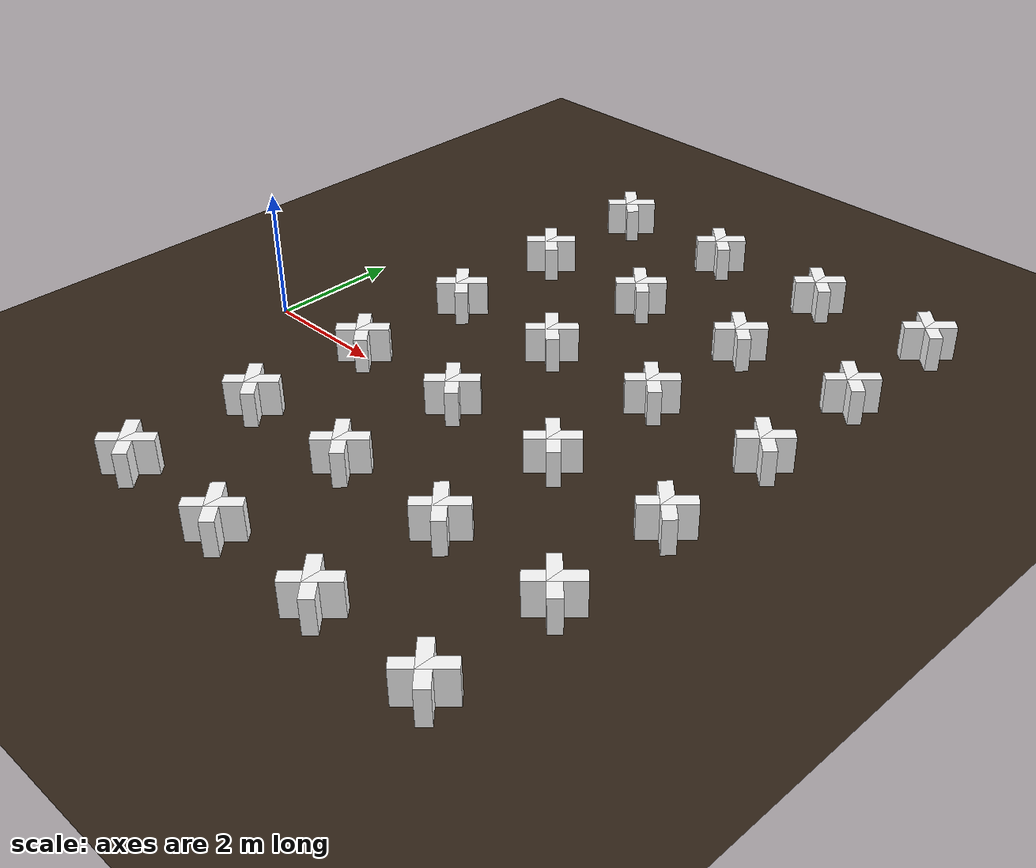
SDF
<?xml version="1.0" ?>
<sdf version="1.8">
  <world name="agribot_farm">
    <physics name="1ms" type="ignored">
      <max_step_size>0.001</max_step_size>
      <real_time_factor>1.0</real_time_factor>
    </physics>

    <plugin filename="gz-sim-physics-system" name="gz::sim::systems::Physics"/>
    <plugin filename="gz-sim-user-commands-system" name="gz::sim::systems::UserCommands"/>
    <plugin filename="gz-sim-scene-broadcaster-system" name="gz::sim::systems::SceneBroadcaster"/>

    <light type="directional" name="sun">
      <cast_shadows>true</cast_shadows>
      <pose>0 0 10 0 0 0</pose>
      <diffuse>0.9 0.9 0.8 1</diffuse>
      <direction>-0.5 0.1 -0.9</direction>
    </light>

    <model name="ground_plane">
      <static>true</static>
      <link name="link">
        <collision name="collision">
          <geometry><plane><normal>0 0 1</normal><size>100 100</size></plane></geometry>
        </collision>
        <visual name="visual">
          <geometry><plane><normal>0 0 1</normal><size>100 100</size></plane></geometry>
          <material><ambient>0.2 0.15 0.1 1</ambient><diffuse>0.2 0.15 0.1 1</diffuse></material>
        </visual>
      </link>
    </model>

    <model name="farm_assets">
      <static>true</static>
      <link name="link">

        <visual name="c1_r1_v1"><pose>2 6 0.15 1.57 0 0.78</pose><geometry><box><size>0.8 0.8 0.2</size></box></geometry><material><diffuse>1 1 1 1</diffuse><pbr><metal><albedo_map>textures/healthy_1.jpg</albedo_map></metal></pbr></material></visual>
        <visual name="c1_r1_v2"><pose>2 6 0.15 1.57 0 -0.78</pose><geometry><box><size>0.8 0.8 0.2</size></box></geometry><material><diffuse>1 1 1 1</diffuse><pbr><metal><albedo_map>textures/healthy_1.jpg</albedo_map></metal></pbr></material></visual>
        <collision name="c1_r1_col"><pose>2 6 0.5 0 0 0</pose><geometry><cylinder><radius>0.05</radius><length>1.0</length></cylinder></geometry></collision>
        <visual name="c1_r2_v1"><pose>2 4 0.15 1.57 0 0.78</pose><geometry><box><size>0.8 0.8 0.2</size></box></geometry><material><diffuse>1 1 1 1</diffuse><pbr><metal><albedo_map>textures/healthy_2.jpg</albedo_map></metal></pbr></material></visual>
        <visual name="c1_r2_v2"><pose>2 4 0.15 1.57 0 -0.78</pose><geometry><box><size>0.8 0.8 0.2</size></box></geometry><material><diffuse>1 1 1 1</diffuse><pbr><metal><albedo_map>textures/healthy_2.jpg</albedo_map></metal></pbr></material></visual>
        <collision name="c1_r2_col"><pose>2 4 0.5 0 0 0</pose><geometry><cylinder><radius>0.05</radius><length>1.0</length></cylinder></geometry></collision>
        <visual name="c1_r3_v1"><pose>2 2 0.15 1.57 0 0.78</pose><geometry><box><size>0.8 0.8 0.2</size></box></geometry><material><diffuse>1 1 1 1</diffuse><pbr><metal><albedo_map>textures/healthy_3.jpg</albedo_map></metal></pbr></material></visual>
        <visual name="c1_r3_v2"><pose>2 2 0.15 1.57 0 -0.78</pose><geometry><box><size>0.8 0.8 0.2</size></box></geometry><material><diffuse>1 1 1 1</diffuse><pbr><metal><albedo_map>textures/healthy_3.jpg</albedo_map></metal></pbr></material></visual>
        <collision name="c1_r3_col"><pose>2 2 0.5 0 0 0</pose><geometry><cylinder><radius>0.05</radius><length>1.0</length></cylinder></geometry></collision>
        <visual name="c1_r4_v1"><pose>2 0 0.15 1.57 0 0.78</pose><geometry><box><size>0.8 0.8 0.2</size></box></geometry><material><diffuse>1 1 1 1</diffuse><pbr><metal><albedo_map>textures/healthy_4.jpg</albedo_map></metal></pbr></material></visual>
        <visual name="c1_r4_v2"><pose>2 0 0.15 1.57 0 -0.78</pose><geometry><box><size>0.8 0.8 0.2</size></box></geometry><material><diffuse>1 1 1 1</diffuse><pbr><metal><albedo_map>textures/healthy_4.jpg</albedo_map></metal></pbr></material></visual>
        <collision name="c1_r4_col"><pose>2 0 0.5 0 0 0</pose><geometry><cylinder><radius>0.05</radius><length>1.0</length></cylinder></geometry></collision>
        <visual name="c1_r5_v1"><pose>2 -2 0.15 1.57 0 0.78</pose><geometry><box><size>0.8 0.8 0.2</size></box></geometry><material><diffuse>1 1 1 1</diffuse><pbr><metal><albedo_map>textures/healthy_5.jpg</albedo_map></metal></pbr></material></visual>
        <visual name="c1_r5_v2"><pose>2 -2 0.15 1.57 0 -0.78</pose><geometry><box><size>0.8 0.8 0.2</size></box></geometry><material><diffuse>1 1 1 1</diffuse><pbr><metal><albedo_map>textures/healthy_5.jpg</albedo_map></metal></pbr></material></visual>
        <collision name="c1_r5_col"><pose>2 -2 0.5 0 0 0</pose><geometry><cylinder><radius>0.05</radius><length>1.0</length></cylinder></geometry></collision>
        <visual name="c1_r6_v1"><pose>2 -4 0.15 1.57 0 0.78</pose><geometry><box><size>0.8 0.8 0.2</size></box></geometry><material><diffuse>1 1 1 1</diffuse><pbr><metal><albedo_map>textures/healthy_6.jpg</albedo_map></metal></pbr></material></visual>
        <visual name="c1_r6_v2"><pose>2 -4 0.15 1.57 0 -0.78</pose><geometry><box><size>0.8 0.8 0.2</size></box></geometry><material><diffuse>1 1 1 1</diffuse><pbr><metal><albedo_map>textures/healthy_6.jpg</albedo_map></metal></pbr></material></visual>
        <collision name="c1_r6_col"><pose>2 -4 0.5 0 0 0</pose><geometry><cylinder><radius>0.05</radius><length>1.0</length></cylinder></geometry></collision>

        <visual name="c2_r1_v1"><pose>4 6 0.15 1.57 0 0.78</pose><geometry><box><size>0.8 0.8 0.2</size></box></geometry><material><diffuse>1 1 1 1</diffuse><pbr><metal><albedo_map>textures/healthy_7.jpg</albedo_map></metal></pbr></material></visual>
        <visual name="c2_r1_v2"><pose>4 6 0.15 1.57 0 -0.78</pose><geometry><box><size>0.8 0.8 0.2</size></box></geometry><material><diffuse>1 1 1 1</diffuse><pbr><metal><albedo_map>textures/healthy_7.jpg</albedo_map></metal></pbr></material></visual>
        <collision name="c2_r1_col"><pose>4 6 0.5 0 0 0</pose><geometry><cylinder><radius>0.05</radius><length>1.0</length></cylinder></geometry></collision>
        <visual name="c2_r2_v1"><pose>4 4 0.15 1.57 0 0.78</pose><geometry><box><size>0.8 0.8 0.2</size></box></geometry><material><diffuse>1 1 1 1</diffuse><pbr><metal><albedo_map>textures/healthy_8.jpg</albedo_map></metal></pbr></material></visual>
        <visual name="c2_r2_v2"><pose>4 4 0.15 1.57 0 -0.78</pose><geometry><box><size>0.8 0.8 0.2</size></box></geometry><material><diffuse>1 1 1 1</diffuse><pbr><metal><albedo_map>textures/healthy_8.jpg</albedo_map></metal></pbr></material></visual>
        <collision name="c2_r2_col"><pose>4 4 0.5 0 0 0</pose><geometry><cylinder><radius>0.05</radius><length>1.0</length></cylinder></geometry></collision>
        <visual name="c2_r3_v1"><pose>4 2 0.15 1.57 0 0.78</pose><geometry><box><size>0.8 0.8 0.2</size></box></geometry><material><diffuse>1 1 1 1</diffuse><pbr><metal><albedo_map>textures/healthy_9.jpg</albedo_map></metal></pbr></material></visual>
        <visual name="c2_r3_v2"><pose>4 2 0.15 1.57 0 -0.78</pose><geometry><box><size>0.8 0.8 0.2</size></box></geometry><material><diffuse>1 1 1 1</diffuse><pbr><metal><albedo_map>textures/healthy_9.jpg</albedo_map></metal></pbr></material></visual>
        <collision name="c2_r3_col"><pose>4 2 0.5 0 0 0</pose><geometry><cylinder><radius>0.05</radius><length>1.0</length></cylinder></geometry></collision>
        <visual name="c2_r4_v1"><pose>4 0 0.15 1.57 0 0.78</pose><geometry><box><size>0.8 0.8 0.2</size></box></geometry><material><diffuse>1 1 1 1</diffuse><pbr><metal><albedo_map>textures/healthy_10.jpg</albedo_map></metal></pbr></material></visual>
        <visual name="c2_r4_v2"><pose>4 0 0.15 1.57 0 -0.78</pose><geometry><box><size>0.8 0.8 0.2</size></box></geometry><material><diffuse>1 1 1 1</diffuse><pbr><metal><albedo_map>textures/healthy_10.jpg</albedo_map></metal></pbr></material></visual>
        <collision name="c2_r4_col"><pose>4 0 0.5 0 0 0</pose><geometry><cylinder><radius>0.05</radius><length>1.0</length></cylinder></geometry></collision>
        <visual name="c2_r5_v1"><pose>4 -2 0.15 1.57 0 0.78</pose><geometry><box><size>0.8 0.8 0.2</size></box></geometry><material><diffuse>1 1 1 1</diffuse><pbr><metal><albedo_map>textures/healthy_11.jpg</albedo_map></metal></pbr></material></visual>
        <visual name="c2_r5_v2"><pose>4 -2 0.15 1.57 0 -0.78</pose><geometry><box><size>0.8 0.8 0.2</size></box></geometry><material><diffuse>1 1 1 1</diffuse><pbr><metal><albedo_map>textures/healthy_11.jpg</albedo_map></metal></pbr></material></visual>
        <collision name="c2_r5_col"><pose>4 -2 0.5 0 0 0</pose><geometry><cylinder><radius>0.05</radius><length>1.0</length></cylinder></geometry></collision>
        <visual name="c2_r6_v1"><pose>4 -4 0.15 1.57 0 0.78</pose><geometry><box><size>0.8 0.8 0.2</size></box></geometry><material><diffuse>1 1 1 1</diffuse><pbr><metal><albedo_map>textures/healthy_12.jpg</albedo_map></metal></pbr></material></visual>
        <visual name="c2_r6_v2"><pose>4 -4 0.15 1.57 0 -0.78</pose><geometry><box><size>0.8 0.8 0.2</size></box></geometry><material><diffuse>1 1 1 1</diffuse><pbr><metal><albedo_map>textures/healthy_12.jpg</albedo_map></metal></pbr></material></visual>
        <collision name="c2_r6_col"><pose>4 -4 0.5 0 0 0</pose><geometry><cylinder><radius>0.05</radius><length>1.0</length></cylinder></geometry></collision>

        <visual name="c3_r1_v1"><pose>6 6 0.15 1.57 0 0.78</pose><geometry><box><size>0.8 0.8 0.2</size></box></geometry><material><diffuse>1 1 1 1</diffuse><pbr><metal><albedo_map>textures/diseased_1.jpg</albedo_map></metal></pbr></material></visual>
        <visual name="c3_r1_v2"><pose>6 6 0.15 1.57 0 -0.78</pose><geometry><box><size>0.8 0.8 0.2</size></box></geometry><material><diffuse>1 1 1 1</diffuse><pbr><metal><albedo_map>textures/diseased_1.jpg</albedo_map></metal></pbr></material></visual>
        <collision name="c3_r1_col"><pose>6 6 0.5 0 0 0</pose><geometry><cylinder><radius>0.05</radius><length>1.0</length></cylinder></geometry></collision>
        <visual name="c3_r2_v1"><pose>6 4 0.15 1.57 0 0.78</pose><geometry><box><size>0.8 0.8 0.2</size></box></geometry><material><diffuse>1 1 1 1</diffuse><pbr><metal><albedo_map>textures/diseased_2.jpg</albedo_map></metal></pbr></material></visual>
        <visual name="c3_r2_v2"><pose>6 4 0.15 1.57 0 -0.78</pose><geometry><box><size>0.8 0.8 0.2</size></box></geometry><material><diffuse>1 1 1 1</diffuse><pbr><metal><albedo_map>textures/diseased_2.jpg</albedo_map></metal></pbr></material></visual>
        <collision name="c3_r2_col"><pose>6 4 0.5 0 0 0</pose><geometry><cylinder><radius>0.05</radius><length>1.0</length></cylinder></geometry></collision>
        <visual name="c3_r3_v1"><pose>6 2 0.15 1.57 0 0.78</pose><geometry><box><size>0.8 0.8 0.2</size></box></geometry><material><diffuse>1 1 1 1</diffuse><pbr><metal><albedo_map>textures/diseased_3.jpg</albedo_map></metal></pbr></material></visual>
        <visual name="c3_r3_v2"><pose>6 2 0.15 1.57 0 -0.78</pose><geometry><box><size>0.8 0.8 0.2</size></box></geometry><material><diffuse>1 1 1 1</diffuse><pbr><metal><albedo_map>textures/diseased_3.jpg</albedo_map></metal></pbr></material></visual>
        <collision name="c3_r3_col"><pose>6 2 0.5 0 0 0</pose><geometry><cylinder><radius>0.05</radius><length>1.0</length></cylinder></geometry></collision>
        <visual name="c3_r4_v1"><pose>6 0 0.15 1.57 0 0.78</pose><geometry><box><size>0.8 0.8 0.2</size></box></geometry><material><diffuse>1 1 1 1</diffuse><pbr><metal><albedo_map>textures/diseased_4.jpg</albedo_map></metal></pbr></material></visual>
        <visual name="c3_r4_v2"><pose>6 0 0.15 1.57 0 -0.78</pose><geometry><box><size>0.8 0.8 0.2</size></box></geometry><material><diffuse>1 1 1 1</diffuse><pbr><metal><albedo_map>textures/diseased_4.jpg</albedo_map></metal></pbr></material></visual>
        <collision name="c3_r4_col"><pose>6 0 0.5 0 0 0</pose><geometry><cylinder><radius>0.05</radius><length>1.0</length></cylinder></geometry></collision>
        <visual name="c3_r5_v1"><pose>6 -2 0.15 1.57 0 0.78</pose><geometry><box><size>0.8 0.8 0.2</size></box></geometry><material><diffuse>1 1 1 1</diffuse><pbr><metal><albedo_map>textures/diseased_5.jpg</albedo_map></metal></pbr></material></visual>
        <visual name="c3_r5_v2"><pose>6 -2 0.15 1.57 0 -0.78</pose><geometry><box><size>0.8 0.8 0.2</size></box></geometry><material><diffuse>1 1 1 1</diffuse><pbr><metal><albedo_map>textures/diseased_5.jpg</albedo_map></metal></pbr></material></visual>
        <collision name="c3_r5_col"><pose>6 -2 0.5 0 0 0</pose><geometry><cylinder><radius>0.05</radius><length>1.0</length></cylinder></geometry></collision>
        <visual name="c3_r6_v1"><pose>6 -4 0.15 1.57 0 0.78</pose><geometry><box><size>0.8 0.8 0.2</size></box></geometry><material><diffuse>1 1 1 1</diffuse><pbr><metal><albedo_map>textures/diseased_6.jpg</albedo_map></metal></pbr></material></visual>
        <visual name="c3_r6_v2"><pose>6 -4 0.15 1.57 0 -0.78</pose><geometry><box><size>0.8 0.8 0.2</size></box></geometry><material><diffuse>1 1 1 1</diffuse><pbr><metal><albedo_map>textures/diseased_6.jpg</albedo_map></metal></pbr></material></visual>
        <collision name="c3_r6_col"><pose>6 -4 0.5 0 0 0</pose><geometry><cylinder><radius>0.05</radius><length>1.0</length></cylinder></geometry></collision>

        <visual name="c4_r1_v1"><pose>8 6 0.15 1.57 0 0.78</pose><geometry><box><size>0.8 0.8 0.2</size></box></geometry><material><diffuse>1 1 1 1</diffuse><pbr><metal><albedo_map>textures/healthy_13.jpg</albedo_map></metal></pbr></material></visual>
        <visual name="c4_r1_v2"><pose>8 6 0.15 1.57 0 -0.78</pose><geometry><box><size>0.8 0.8 0.2</size></box></geometry><material><diffuse>1 1 1 1</diffuse><pbr><metal><albedo_map>textures/healthy_13.jpg</albedo_map></metal></pbr></material></visual>
        <collision name="c4_r1_col"><pose>8 6 0.5 0 0 0</pose><geometry><cylinder><radius>0.05</radius><length>1.0</length></cylinder></geometry></collision>
        <visual name="c4_r2_v1"><pose>8 4 0.15 1.57 0 0.78</pose><geometry><box><size>0.8 0.8 0.2</size></box></geometry><material><diffuse>1 1 1 1</diffuse><pbr><metal><albedo_map>textures/healthy_14.jpg</albedo_map></metal></pbr></material></visual>
        <visual name="c4_r2_v2"><pose>8 4 0.15 1.57 0 -0.78</pose><geometry><box><size>0.8 0.8 0.2</size></box></geometry><material><diffuse>1 1 1 1</diffuse><pbr><metal><albedo_map>textures/healthy_14.jpg</albedo_map></metal></pbr></material></visual>
        <collision name="c4_r2_col"><pose>8 4 0.5 0 0 0</pose><geometry><cylinder><radius>0.05</radius><length>1.0</length></cylinder></geometry></collision>
        <visual name="c4_r3_v1"><pose>8 2 0.15 1.57 0 0.78</pose><geometry><box><size>0.8 0.8 0.2</size></box></geometry><material><diffuse>1 1 1 1</diffuse><pbr><metal><albedo_map>textures/healthy_15.jpg</albedo_map></metal></pbr></material></visual>
        <visual name="c4_r3_v2"><pose>8 2 0.15 1.57 0 -0.78</pose><geometry><box><size>0.8 0.8 0.2</size></box></geometry><material><diffuse>1 1 1 1</diffuse><pbr><metal><albedo_map>textures/healthy_15.jpg</albedo_map></metal></pbr></material></visual>
        <collision name="c4_r3_col"><pose>8 2 0.5 0 0 0</pose><geometry><cylinder><radius>0.05</radius><length>1.0</length></cylinder></geometry></collision>
        <visual name="c4_r4_v1"><pose>8 0 0.15 1.57 0 0.78</pose><geometry><box><size>0.8 0.8 0.2</size></box></geometry><material><diffuse>1 1 1 1</diffuse><pbr><metal><albedo_map>textures/diseased_7.jpg</albedo_map></metal></pbr></material></visual>
        <visual name="c4_r4_v2"><pose>8 0 0.15 1.57 0 -0.78</pose><geometry><box><size>0.8 0.8 0.2</size></box></geometry><material><diffuse>1 1 1 1</diffuse><pbr><metal><albedo_map>textures/diseased_7.jpg</albedo_map></metal></pbr></material></visual>
        <collision name="c4_r4_col"><pose>8 0 0.5 0 0 0</pose><geometry><cylinder><radius>0.05</radius><length>1.0</length></cylinder></geometry></collision>
        <visual name="c4_r5_v1"><pose>8 -2 0.15 1.57 0 0.78</pose><geometry><box><size>0.8 0.8 0.2</size></box></geometry><material><diffuse>1 1 1 1</diffuse><pbr><metal><albedo_map>textures/diseased_8.jpg</albedo_map></metal></pbr></material></visual>
        <visual name="c4_r5_v2"><pose>8 -2 0.15 1.57 0 -0.78</pose><geometry><box><size>0.8 0.8 0.2</size></box></geometry><material><diffuse>1 1 1 1</diffuse><pbr><metal><albedo_map>textures/diseased_8.jpg</albedo_map></metal></pbr></material></visual>
        <collision name="c4_r5_col"><pose>8 -2 0.5 0 0 0</pose><geometry><cylinder><radius>0.05</radius><length>1.0</length></cylinder></geometry></collision>
        <visual name="c4_r6_v1"><pose>8 -4 0.15 1.57 0 0.78</pose><geometry><box><size>0.8 0.8 0.2</size></box></geometry><material><diffuse>1 1 1 1</diffuse><pbr><metal><albedo_map>textures/diseased_9.jpg</albedo_map></metal></pbr></material></visual>
        <visual name="c4_r6_v2"><pose>8 -4 0.15 1.57 0 -0.78</pose><geometry><box><size>0.8 0.8 0.2</size></box></geometry><material><diffuse>1 1 1 1</diffuse><pbr><metal><albedo_map>textures/diseased_9.jpg</albedo_map></metal></pbr></material></visual>
        <collision name="c4_r6_col"><pose>8 -4 0.5 0 0 0</pose><geometry><cylinder><radius>0.05</radius><length>1.0</length></cylinder></geometry></collision>

      </link>
    </model>
  </world>
</sdf>
